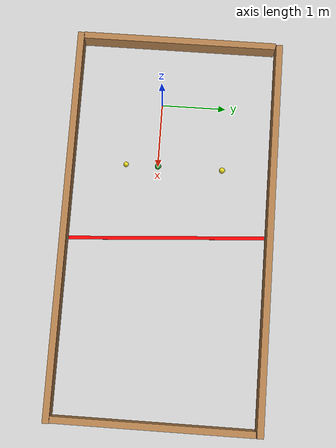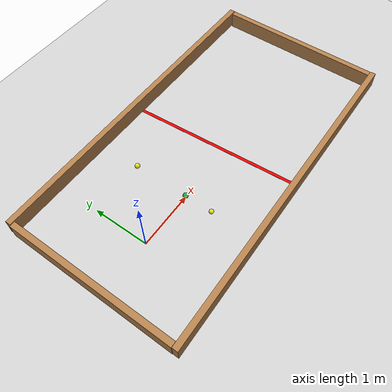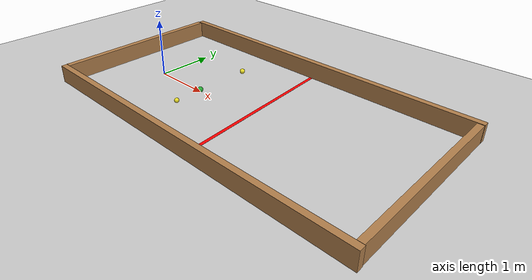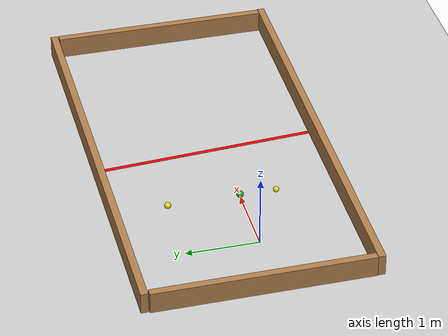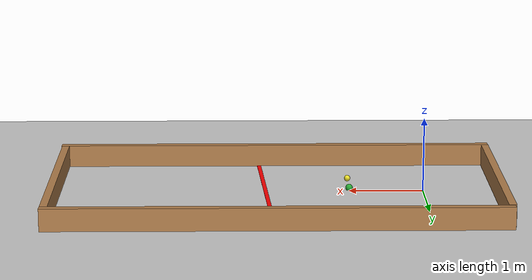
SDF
<sdf version="1.7">
 <world name="default">
  <scene><ambient>0.4 0.4 0.4 1</ambient><background>0.7 0.7 0.7 1</background><shadows>1</shadows></scene>
  <light name="sun" type="directional">
   <pose>0 0 10 0 -0 0</pose>
   <diffuse>0.8 0.8 0.8 1</diffuse>
   <specular>0.2 0.2 0.2 1</specular>
   <attenuation>
    <range>1000</range>
    <constant>0.9</constant>
    <linear>0.01</linear>
    <quadratic>0.001</quadratic>
   </attenuation>
   <direction>-0.5 0.1 -0.9</direction>
   <spot><inner_angle>0</inner_angle><outer_angle>0</outer_angle><falloff>0</falloff></spot>
  </light>
  <model name="ground_plane">
   <static>1</static>
   <link name="link">
    <collision name="collision">
     <geometry><plane><normal>0 0 1</normal><size>100 100</size></plane></geometry>
     <surface>
      <contact><collide_bitmask>65535</collide_bitmask></contact>
      <friction><ode><mu>100</mu><mu2>50</mu2></ode></friction>
     </surface>
    </collision>
    <visual name="visual">
     <cast_shadows>0</cast_shadows>
     <geometry><plane><normal>0 0 1</normal><size>100 100</size></plane></geometry>
     <material>
      <script><uri>file://media/materials/scripts/gazebo.material</uri><name>Gazebo/Grey</name></script>
     </material>
    </visual>
   </link>
  </model>
  <physics type="ode">
   <real_time_update_rate>1000</real_time_update_rate>
   <max_step_size>0.001</max_step_size>
   <real_time_factor>1</real_time_factor>
   <ode>
    <solver>
     <type>quick</type>
     <iters>150</iters>
     <precon_iters>0</precon_iters>
     <sor>1.4</sor>
     <use_dynamic_moi_rescaling>1</use_dynamic_moi_rescaling>
    </solver>
    <constraints>
     <cfm>1e-05</cfm>
     <erp>0.2</erp>
     <contact_max_correcting_vel>2000</contact_max_correcting_vel>
     <contact_surface_layer>0.01</contact_surface_layer>
    </constraints>
   </ode>
  </physics>
  <gravity>0 0 -9.8</gravity>
  <magnetic_field>6e-06 2.3e-05 -4.2e-05</magnetic_field>
  <atmosphere type="adiabatic"/>
  <spherical_coordinates>
   <surface_model>EARTH_WGS84</surface_model>
   <latitude_deg>0</latitude_deg>
   <longitude_deg>0</longitude_deg>
   <elevation>0</elevation>
   <heading_deg>0</heading_deg>
  </spherical_coordinates>
  <model name="side_wall">
   <link name="link">
    <inertial>
     <mass>30</mass>
     <inertia><ixx>0.25</ixx><ixy>0</ixy><ixz>0</ixz><iyy>90.225</iyy><iyz>0</iyz><izz>90.025</izz></inertia>
    </inertial>
    <visual name="visual">
     <geometry><box><size>6 0.1 0.3</size></box></geometry>
     <material>
      <script><name>Gazebo/Wood</name><uri>file://media/materials/scripts/gazebo.material</uri></script>
      <shader type="pixel"><normal_map>__default__</normal_map></shader>
      <ambient>1 1 1 1</ambient>
      <diffuse>1 1 1 1</diffuse>
      <specular>0.2 0.2 0.2 1</specular>
      <emissive>0 0 0 1</emissive>
     </material>
    </visual>
    <collision name="collision">
     <geometry><box><size>6 0.1 0.3</size></box></geometry>
     <surface>
      <friction>
       <ode><mu>1</mu><mu2>1</mu2><fdir1>0 0 0</fdir1><slip1>0</slip1><slip2>0</slip2></ode>
       <torsional>
        <coefficient>1</coefficient>
        <patch_radius>0</patch_radius>
        <surface_radius>0</surface_radius>
        <use_patch_radius>1</use_patch_radius>
        <ode><slip>0</slip></ode>
       </torsional>
      </friction>
      <bounce><restitution_coefficient>0</restitution_coefficient><threshold>1e+06</threshold></bounce>
      <contact>
       <collide_without_contact>0</collide_without_contact>
       <collide_without_contact_bitmask>1</collide_without_contact_bitmask>
       <collide_bitmask>1</collide_bitmask>
       <ode>
        <soft_cfm>0</soft_cfm>
        <soft_erp>0.2</soft_erp>
        <kp>1e+13</kp>
        <kd>1</kd>
        <max_vel>0.01</max_vel>
        <min_depth>0</min_depth>
       </ode>
       <bullet>
        <split_impulse>1</split_impulse>
        <split_impulse_penetration_threshold>-0.01</split_impulse_penetration_threshold>
        <soft_cfm>0</soft_cfm>
        <soft_erp>0.2</soft_erp>
        <kp>1e+13</kp>
        <kd>1</kd>
       </bullet>
      </contact>
     </surface>
    </collision>
   </link>
   <static>0</static>
   <pose>1.97934 -1.35219 0.15 0 -0 -0.00232</pose>
  </model>
  <model name="front_wall">
   <link name="link">
    <inertial>
     <mass>1</mass>
     <inertia>
      <ixx>0.166667</ixx>
      <ixy>0</ixy>
      <ixz>0</ixz>
      <iyy>0.166667</iyy>
      <iyz>0</iyz>
      <izz>0.166667</izz>
     </inertia>
    </inertial>
    <visual name="visual">
     <geometry><box><size>0.1 3 0.3</size></box></geometry>
     <material>
      <script><name>Gazebo/Wood</name><uri>file://media/materials/scripts/gazebo.material</uri></script>
      <shader type="pixel"><normal_map>__default__</normal_map></shader>
      <ambient>1 1 1 1</ambient>
      <diffuse>1 1 1 1</diffuse>
      <specular>0.2 0.2 0.2 1</specular>
      <emissive>0 0 0 1</emissive>
     </material>
    </visual>
    <collision name="collision">
     <geometry><box><size>0.1 3 0.3</size></box></geometry>
     <surface>
      <friction>
       <ode><mu>1</mu><mu2>1</mu2><fdir1>0 0 0</fdir1><slip1>0</slip1><slip2>0</slip2></ode>
       <torsional>
        <coefficient>1</coefficient>
        <patch_radius>0</patch_radius>
        <surface_radius>0</surface_radius>
        <use_patch_radius>1</use_patch_radius>
        <ode><slip>0</slip></ode>
       </torsional>
      </friction>
      <bounce><restitution_coefficient>0</restitution_coefficient><threshold>1e+06</threshold></bounce>
      <contact>
       <collide_without_contact>0</collide_without_contact>
       <collide_without_contact_bitmask>1</collide_without_contact_bitmask>
       <collide_bitmask>1</collide_bitmask>
       <ode>
        <soft_cfm>0</soft_cfm>
        <soft_erp>0.2</soft_erp>
        <kp>1e+13</kp>
        <kd>1</kd>
        <max_vel>0.01</max_vel>
        <min_depth>0</min_depth>
       </ode>
       <bullet>
        <split_impulse>1</split_impulse>
        <split_impulse_penetration_threshold>-0.01</split_impulse_penetration_threshold>
        <soft_cfm>0</soft_cfm>
        <soft_erp>0.2</soft_erp>
        <kp>1e+13</kp>
        <kd>1</kd>
       </bullet>
      </contact>
     </surface>
    </collision>
   </link>
   <static>0</static>
   <pose>4.92851 0.193632 0.14967 0.00022 2e-06 -0.004905</pose>
  </model>
  <model name="side_wall_0">
   <link name="link">
    <inertial>
     <mass>30</mass>
     <inertia><ixx>0.25</ixx><ixy>0</ixy><ixz>0</ixz><iyy>90.225</iyy><iyz>0</iyz><izz>90.025</izz></inertia>
    </inertial>
    <visual name="visual">
     <geometry><box><size>6 0.1 0.3</size></box></geometry>
     <material>
      <script><name>Gazebo/Wood</name><uri>file://media/materials/scripts/gazebo.material</uri></script>
      <shader type="pixel"><normal_map>__default__</normal_map></shader>
      <ambient>1 1 1 1</ambient>
      <diffuse>1 1 1 1</diffuse>
      <specular>0.2 0.2 0.2 1</specular>
      <emissive>0 0 0 1</emissive>
     </material>
    </visual>
    <collision name="collision">
     <geometry><box><size>6 0.1 0.3</size></box></geometry>
     <surface>
      <friction>
       <ode><mu>1</mu><mu2>1</mu2><fdir1>0 0 0</fdir1><slip1>0</slip1><slip2>0</slip2></ode>
       <torsional>
        <coefficient>1</coefficient>
        <patch_radius>0</patch_radius>
        <surface_radius>0</surface_radius>
        <use_patch_radius>1</use_patch_radius>
        <ode><slip>0</slip></ode>
       </torsional>
      </friction>
      <bounce><restitution_coefficient>0</restitution_coefficient><threshold>1e+06</threshold></bounce>
      <contact>
       <collide_without_contact>0</collide_without_contact>
       <collide_without_contact_bitmask>1</collide_without_contact_bitmask>
       <collide_bitmask>1</collide_bitmask>
       <ode>
        <soft_cfm>0</soft_cfm>
        <soft_erp>0.2</soft_erp>
        <kp>1e+13</kp>
        <kd>1</kd>
        <max_vel>0.01</max_vel>
        <min_depth>0</min_depth>
       </ode>
       <bullet>
        <split_impulse>1</split_impulse>
        <split_impulse_penetration_threshold>-0.01</split_impulse_penetration_threshold>
        <soft_cfm>0</soft_cfm>
        <soft_erp>0.2</soft_erp>
        <kp>1e+13</kp>
        <kd>1</kd>
       </bullet>
      </contact>
     </surface>
    </collision>
   </link>
   <static>0</static>
   <pose>1.98761 1.76507 0.15 0 -0 -0.002314</pose>
  </model>
  <model name="front_wall_0">
   <link name="link">
    <inertial>
     <mass>1</mass>
     <inertia>
      <ixx>0.166667</ixx>
      <ixy>0</ixy>
      <ixz>0</ixz>
      <iyy>0.166667</iyy>
      <iyz>0</iyz>
      <izz>0.166667</izz>
     </inertia>
    </inertial>
    <visual name="visual">
     <geometry><box><size>0.1 3 0.3</size></box></geometry>
     <material>
      <script><name>Gazebo/Wood</name><uri>file://media/materials/scripts/gazebo.material</uri></script>
      <shader type="pixel"><normal_map>__default__</normal_map></shader>
      <ambient>1 1 1 1</ambient>
      <diffuse>1 1 1 1</diffuse>
      <specular>0.2 0.2 0.2 1</specular>
      <emissive>0 0 0 1</emissive>
     </material>
    </visual>
    <collision name="collision">
     <geometry><box><size>0.1 3 0.3</size></box></geometry>
     <surface>
      <friction>
       <ode><mu>1</mu><mu2>1</mu2><fdir1>0 0 0</fdir1><slip1>0</slip1><slip2>0</slip2></ode>
       <torsional>
        <coefficient>1</coefficient>
        <patch_radius>0</patch_radius>
        <surface_radius>0</surface_radius>
        <use_patch_radius>1</use_patch_radius>
        <ode><slip>0</slip></ode>
       </torsional>
      </friction>
      <bounce><restitution_coefficient>0</restitution_coefficient><threshold>1e+06</threshold></bounce>
      <contact>
       <collide_without_contact>0</collide_without_contact>
       <collide_without_contact_bitmask>1</collide_without_contact_bitmask>
       <collide_bitmask>1</collide_bitmask>
       <ode>
        <soft_cfm>0</soft_cfm>
        <soft_erp>0.2</soft_erp>
        <kp>1e+13</kp>
        <kd>1</kd>
        <max_vel>0.01</max_vel>
        <min_depth>0</min_depth>
       </ode>
       <bullet>
        <split_impulse>1</split_impulse>
        <split_impulse_penetration_threshold>-0.01</split_impulse_penetration_threshold>
        <soft_cfm>0</soft_cfm>
        <soft_erp>0.2</soft_erp>
        <kp>1e+13</kp>
        <kd>1</kd>
       </bullet>
      </contact>
     </surface>
    </collision>
   </link>
   <static>0</static>
   <pose>-0.979589 0.207331 0.14967 -0.00022 2e-06 0.0018</pose>
  </model>
  <model name="red_line_3">
   <link name="link">
    <inertial>
     <mass>1</mass>
     <inertia>
      <ixx>0.166667</ixx>
      <ixy>0</ixy>
      <ixz>0</ixz>
      <iyy>0.166667</iyy>
      <iyz>0</iyz>
      <izz>0.166667</izz>
     </inertia>
    </inertial>
    <visual name="visual">
     <geometry><box><size>0.053277 3.01438 0.002637</size></box></geometry>
     <material>
      <script><name>Gazebo/Grey</name><uri>file://media/materials/scripts/gazebo.material</uri></script>
      <shader type="pixel"><normal_map>__default__</normal_map></shader>
      <ambient>1 0 0 1</ambient>
      <diffuse>0.7 0.7 0.7 1</diffuse>
      <specular>0.01 0.01 0.01 1</specular>
      <emissive>0 0 0 1</emissive>
     </material>
    </visual>
    <collision name="collision">
     <geometry><box><size>0.053277 3.01438 0.002637</size></box></geometry>
     <surface>
      <friction>
       <ode><mu>1</mu><mu2>1</mu2><fdir1>0 0 0</fdir1><slip1>0</slip1><slip2>0</slip2></ode>
       <torsional>
        <coefficient>1</coefficient>
        <patch_radius>0</patch_radius>
        <surface_radius>0</surface_radius>
        <use_patch_radius>1</use_patch_radius>
        <ode><slip>0</slip></ode>
       </torsional>
      </friction>
      <bounce><restitution_coefficient>0</restitution_coefficient><threshold>1e+06</threshold></bounce>
      <contact>
       <collide_without_contact>0</collide_without_contact>
       <collide_without_contact_bitmask>1</collide_without_contact_bitmask>
       <collide_bitmask>1</collide_bitmask>
       <ode>
        <soft_cfm>0</soft_cfm>
        <soft_erp>0.2</soft_erp>
        <kp>1e+13</kp>
        <kd>1</kd>
        <max_vel>0.01</max_vel>
        <min_depth>0</min_depth>
       </ode>
       <bullet>
        <split_impulse>1</split_impulse>
        <split_impulse_penetration_threshold>-0.01</split_impulse_penetration_threshold>
        <soft_cfm>0</soft_cfm>
        <soft_erp>0.2</soft_erp>
        <kp>1e+13</kp>
        <kd>1</kd>
       </bullet>
      </contact>
     </surface>
    </collision>
   </link>
   <static>0</static>
   <pose>2.1103 0.206001 0.001319 0 -8e-06 0.06298</pose>
  </model>
  <model name="ball_red_0">
   <link name="link">
    <inertial>
     <mass>1</mass>
     <inertia><ixx>0.1</ixx><ixy>0</ixy><ixz>0</ixz><iyy>0.1</iyy><iyz>0</iyz><izz>0.1</izz></inertia>
    </inertial>
    <visual name="visual">
     <geometry><sphere><radius>0.0408215</radius></sphere></geometry>
     <material>
      <script><name>Gazebo/Yellow</name><uri>file://media/materials/scripts/gazebo.material</uri></script>
      <shader type="pixel"><normal_map>__default__</normal_map></shader>
      <ambient>1 0 0 1</ambient>
      <diffuse>0.7 0.7 0.7 1</diffuse>
      <specular>0.01 0.01 0.01 1</specular>
      <emissive>0 0 0 1</emissive>
     </material>
    </visual>
    <collision name="collision">
     <geometry><sphere><radius>0.0408215</radius></sphere></geometry>
     <surface>
      <friction>
       <ode><mu>0.001</mu><mu2>0.001</mu2><fdir1>0 0 0</fdir1><slip1>0</slip1><slip2>0</slip2></ode>
       <torsional>
        <coefficient>1</coefficient>
        <patch_radius>0</patch_radius>
        <surface_radius>0</surface_radius>
        <use_patch_radius>1</use_patch_radius>
        <ode><slip>0</slip></ode>
       </torsional>
      </friction>
      <bounce><restitution_coefficient>0</restitution_coefficient><threshold>1e+06</threshold></bounce>
      <contact>
       <collide_without_contact>0</collide_without_contact>
       <collide_without_contact_bitmask>1</collide_without_contact_bitmask>
       <collide_bitmask>1</collide_bitmask>
       <ode>
        <soft_cfm>0</soft_cfm>
        <soft_erp>0.2</soft_erp>
        <kp>1e+13</kp>
        <kd>1</kd>
        <max_vel>0.01</max_vel>
        <min_depth>0</min_depth>
       </ode>
       <bullet>
        <split_impulse>1</split_impulse>
        <split_impulse_penetration_threshold>-0.01</split_impulse_penetration_threshold>
        <soft_cfm>0</soft_cfm>
        <soft_erp>0.2</soft_erp>
        <kp>1e+13</kp>
        <kd>1</kd>
       </bullet>
      </contact>
     </surface>
    </collision>
   </link>
   <static>0</static>
   <pose>1 -0.5 0.040822 0 -0 0</pose>
  </model>
  <model name="ball_blue_0">
   <link name="link">
    <inertial>
     <mass>1</mass>
     <inertia><ixx>0.1</ixx><ixy>0</ixy><ixz>0</ixz><iyy>0.1</iyy><iyz>0</iyz><izz>0.1</izz></inertia>
    </inertial>
    <visual name="visual">
     <geometry><sphere><radius>0.044838</radius></sphere></geometry>
     <material>
      <script><name>Gazebo/Yellow</name><uri>file://media/materials/scripts/gazebo.material</uri></script>
      <shader type="pixel"><normal_map>__default__</normal_map></shader>
      <ambient>0 0 1 1</ambient>
      <diffuse>0.7 0.7 0.7 1</diffuse>
      <specular>0.01 0.01 0.01 1</specular>
      <emissive>0 0 0 1</emissive>
     </material>
    </visual>
    <collision name="collision">
     <geometry><sphere><radius>0.044838</radius></sphere></geometry>
     <surface>
      <friction>
       <ode><mu>0.001</mu><mu2>0.001</mu2><fdir1>0 0 0</fdir1><slip1>0</slip1><slip2>0</slip2></ode>
       <torsional>
        <coefficient>1</coefficient>
        <patch_radius>0</patch_radius>
        <surface_radius>0</surface_radius>
        <use_patch_radius>1</use_patch_radius>
        <ode><slip>0</slip></ode>
       </torsional>
      </friction>
      <bounce><restitution_coefficient>0</restitution_coefficient><threshold>1e+06</threshold></bounce>
      <contact>
       <collide_without_contact>0</collide_without_contact>
       <collide_without_contact_bitmask>1</collide_without_contact_bitmask>
       <collide_bitmask>1</collide_bitmask>
       <ode>
        <soft_cfm>0</soft_cfm>
        <soft_erp>0.2</soft_erp>
        <kp>1e+13</kp>
        <kd>1</kd>
        <max_vel>0.01</max_vel>
        <min_depth>0</min_depth>
       </ode>
       <bullet>
        <split_impulse>1</split_impulse>
        <split_impulse_penetration_threshold>-0.01</split_impulse_penetration_threshold>
        <soft_cfm>0</soft_cfm>
        <soft_erp>0.2</soft_erp>
        <kp>1e+13</kp>
        <kd>1</kd>
       </bullet>
      </contact>
     </surface>
    </collision>
   </link>
   <static>0</static>
   <pose>1 1 0.044838 0 -0 0</pose>
  </model>
  <model name="ball_green">
   <link name="link">
    <inertial>
     <mass>1</mass>
     <inertia><ixx>1e-05</ixx><ixy>0</ixy><ixz>0</ixz><iyy>1e-05</iyy><iyz>0</iyz><izz>1e-05</izz></inertia>
    </inertial>
    <visual name="visual">
     <geometry><sphere><radius>0.047869</radius></sphere></geometry>
     <material>
      <script><name>Gazebo/Green</name><uri>file://media/materials/scripts/gazebo.material</uri></script>
      <shader type="pixel"><normal_map>__default__</normal_map></shader>
      <ambient>0 1 0 1</ambient>
      <diffuse>0.7 0.7 0.7 1</diffuse>
      <specular>0.01 0.01 0.01 1</specular>
      <emissive>0 0 0 1</emissive>
     </material>
    </visual>
    <collision name="collision">
     <geometry><sphere><radius>0.047869</radius></sphere></geometry>
     <surface>
      <friction>
       <ode><mu>1e-08</mu><mu2>1e-08</mu2><fdir1>0 0 0</fdir1><slip1>0</slip1><slip2>0</slip2></ode>
       <torsional>
        <coefficient>1</coefficient>
        <patch_radius>0</patch_radius>
        <surface_radius>0</surface_radius>
        <use_patch_radius>1</use_patch_radius>
        <ode><slip>0</slip></ode>
       </torsional>
      </friction>
      <bounce><restitution_coefficient>0</restitution_coefficient><threshold>1e+06</threshold></bounce>
      <contact>
       <collide_without_contact>0</collide_without_contact>
       <collide_without_contact_bitmask>1</collide_without_contact_bitmask>
       <collide_bitmask>1</collide_bitmask>
       <ode>
        <soft_cfm>0</soft_cfm>
        <soft_erp>0.2</soft_erp>
        <kp>1e+13</kp>
        <kd>1</kd>
        <max_vel>0.01</max_vel>
        <min_depth>0</min_depth>
       </ode>
       <bullet>
        <split_impulse>1</split_impulse>
        <split_impulse_penetration_threshold>-0.01</split_impulse_penetration_threshold>
        <soft_cfm>0</soft_cfm>
        <soft_erp>0.2</soft_erp>
        <kp>1e+13</kp>
        <kd>1</kd>
       </bullet>
      </contact>
     </surface>
    </collision>
   </link>
   <static>0</static>
   <pose>1 0 0.047869 0 -0 0</pose>
  </model>
 </world>
</sdf>
